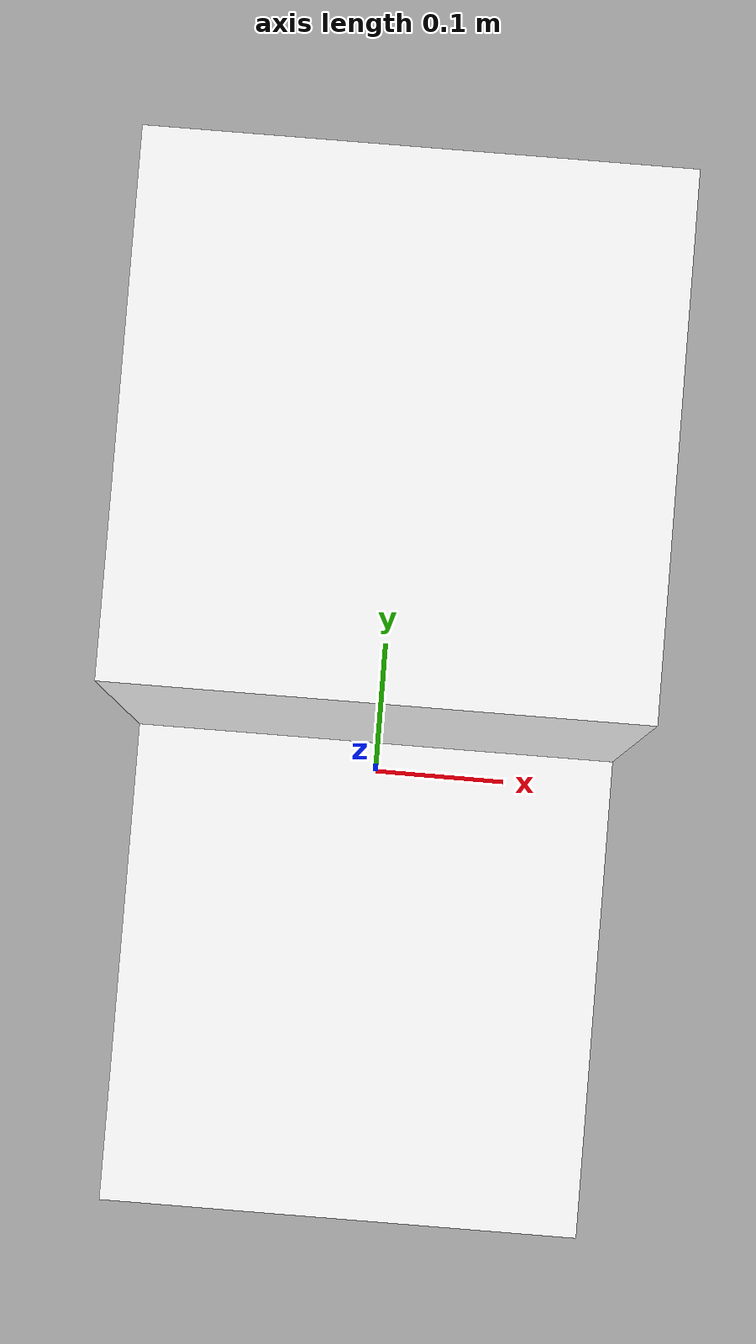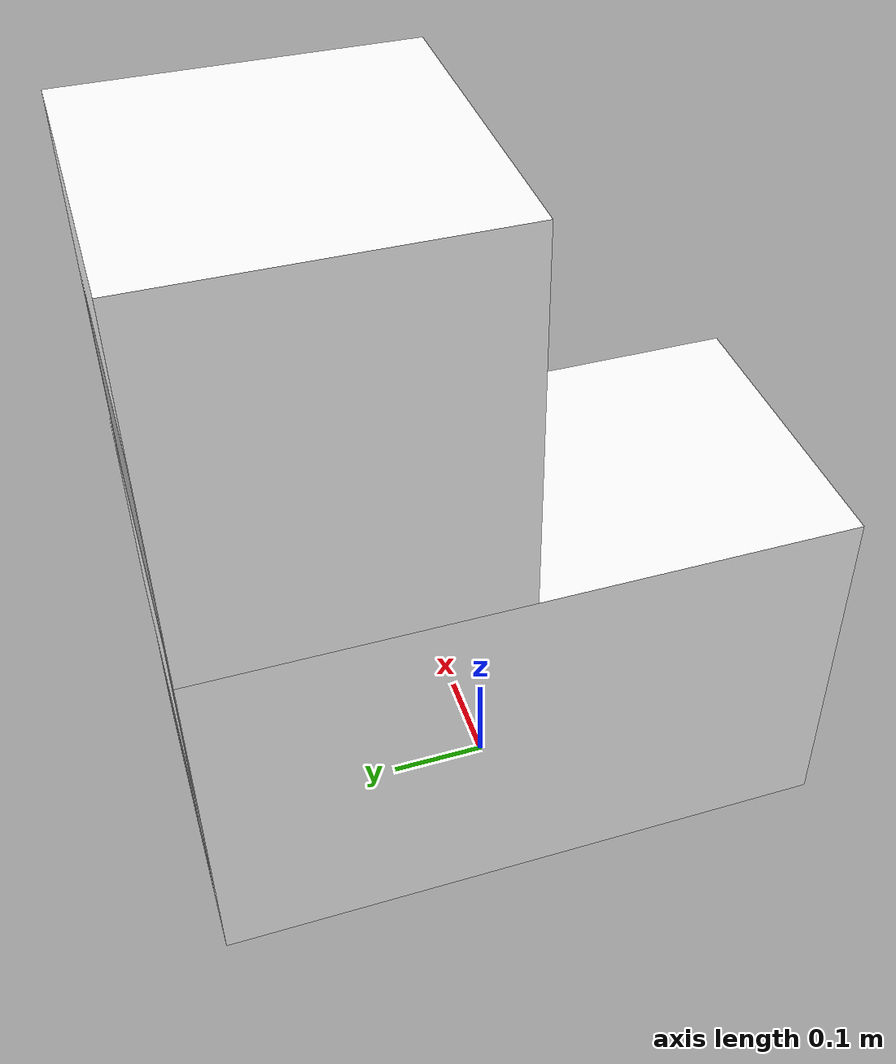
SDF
<?xml version="1.0"?>
<sdf version='1.5'>
  <model name="car2">
  <link name='car_body'>
    <pose>0 0 0.19 0 0 0</pose>
    <inertial>
      <inertia>
        <ixx>1e6</ixx>
        <ixy>0</ixy>
        <ixz>0</ixz>
        <iyy>1e6</iyy>
        <iyz>0</iyz>
        <izz>1e6</izz>
      </inertia>
      <mass>1e6</mass>
    </inertial>
    <collision name='collision'>
      <geometry>
        <box>
          <size>0.32 0.64 0.38</size>
        </box>
      </geometry>
    </collision>
    <visual name='visual'>
      <geometry>
        <box>
          <size>0.32 0.64 0.38</size>
        </box>
      </geometry>
        <material>
          <ambient>1 1 0 1</ambient>
          <diffuse>1 1 1 1</diffuse>
          <specular>0 0.5 0 0</specular>
          <emissive>0 0 0 1</emissive>
        </material>
    </visual>
  </link>

  <link name='car_top'>
    <pose>0 0.16 0.57 0 0 0</pose>
    <inertial>
      <inertia>
        <ixx>1e6</ixx>
        <ixy>0</ixy>
        <ixz>0</ixz>
        <iyy>1e6</iyy>
        <iyz>0</iyz>
        <izz>1e6</izz>
      </inertia>
      <mass>1e6</mass>
    </inertial>
    <collision name='collision'>
      <geometry>
        <box>
          <size>0.32 0.32 0.38</size>
        </box>
      </geometry>
    </collision>
    <visual name='visual'>
      <geometry>
        <box>
          <size>0.32 0.32 0.38</size>
        </box>
      </geometry>
        <material>
          <ambient>1 1 0 1</ambient>
          <diffuse>1 1 1 1</diffuse>
          <specular>0 0.5 0 0</specular>
          <emissive>0 0 0 1</emissive>
        </material>
    </visual>
  </link>

  <link name='plate_cover1'>
    <pose>0 0.321 0.32 0 0 0</pose>
    <inertial>
      <inertia>
        <ixx>1e6</ixx>
        <ixy>0</ixy>
        <ixz>0</ixz>
        <iyy>1e6</iyy>
        <iyz>0</iyz>
        <izz>1e6</izz>
      </inertia>
      <mass>1e6</mass>
    </inertial>
    <collision name='collision'>
      <geometry>
        <box>
          <size>1e-6 1e-6 1e-6</size>
        </box>
      </geometry>
    </collision>
    <visual name='visual'>
      <geometry>
        <box>
          <size>0.32 1e-4 0.22</size>
        </box>
      </geometry>
        <material>
          <ambient>1 1 0 1</ambient>
          <diffuse>1 1 1 1</diffuse>
          <specular>0 0.5 0 0</specular>
          <emissive>0 0 0 1</emissive>
        </material>
    </visual>
  </link>

  <link name='plate'>
    <pose>0 0.32 0.325 0 0 0</pose>
    <inertial>
      <inertia>
        <ixx>1e6</ixx>
        <ixy>0</ixy>
        <ixz>0</ixz>
        <iyy>1e6</iyy>
        <iyz>0</iyz>
        <izz>1e6</izz>
      </inertia>
      <mass>1e6</mass>
    </inertial>
    <collision name='collision'>
      <geometry>
        <box>
          <size>1e-6 1e-6 1e-6</size>
        </box>
      </geometry>
    </collision>
    <visual name='visual'>
      <geometry>
        <box>
          <size>0.28 1e-4 0.55</size>
        </box>
      </geometry>
      <material>
        <script>
          <uri>file://materials/scripts</uri>
          <uri>file://materials/textures</uri>
          <name>car2</name>
        </script>
      </material>
    </visual>
  </link>
</model>
</sdf>
